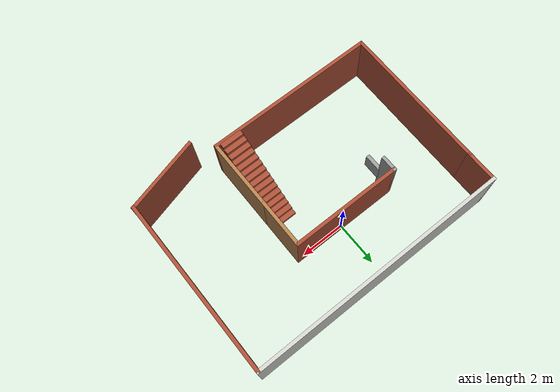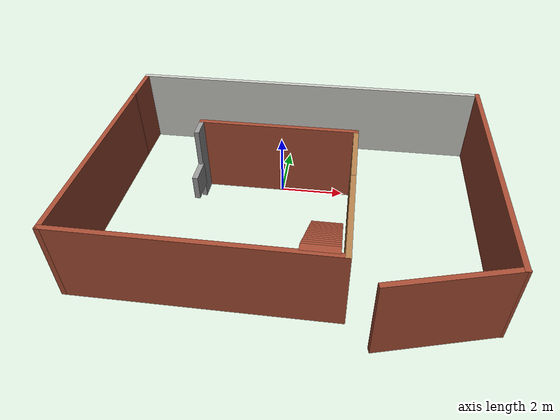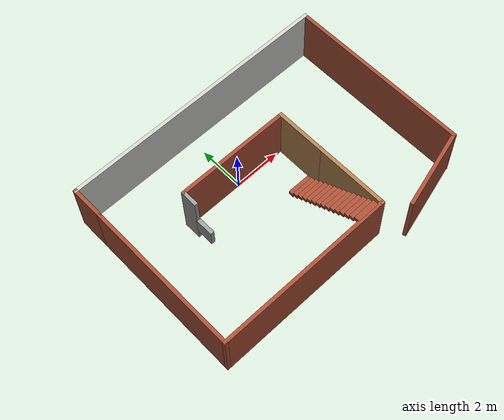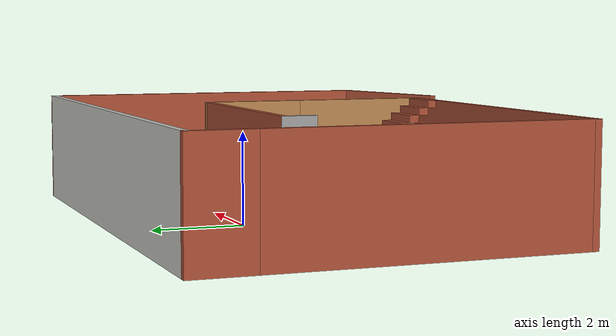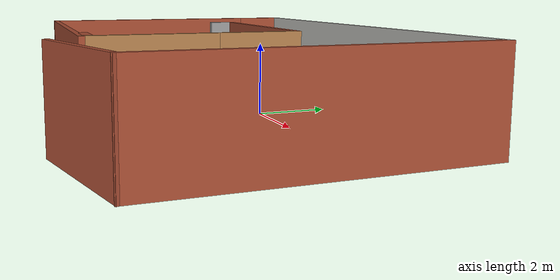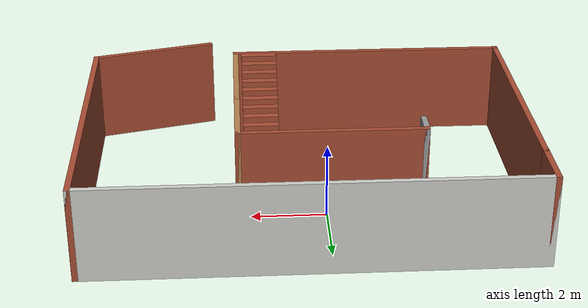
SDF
<?xml version='1.0'?>
<sdf version='1.6'>
  <model name='myModel'>
    <pose frame=''>0.508428 -1.58695 0 0 -0 0</pose>
    <link name='Stairs_0'>
      <visual name='Stairs_0_Visual_0'>
        <pose frame=''>1.12473 -0.163848 0.083333 0 -0 0</pose>
        <geometry>
          <box>
            <size>1 0.233333 0.166667</size>
          </box>
        </geometry>
        <material>
          <script>
            <uri>file://media/materials/scripts/gazebo.material</uri>
            <name>Gazebo/Bricks</name>
          </script>
          <ambient>1 1 1 1</ambient>
        </material>
        <meta>
          <layer>0</layer>
        </meta>
      </visual>
      <collision name='Stairs_0_Collision_0'>
        <geometry>
          <box>
            <size>1 0.233333 0.166667</size>
          </box>
        </geometry>
        <pose frame=''>1.12473 -0.163848 0.083333 0 -0 0</pose>
      </collision>
      <visual name='Stairs_0_Visual_1'>
        <pose frame=''>1.12473 -0.397181 0.25 0 -0 0</pose>
        <geometry>
          <box>
            <size>1 0.233333 0.166667</size>
          </box>
        </geometry>
        <material>
          <script>
            <uri>file://media/materials/scripts/gazebo.material</uri>
            <name>Gazebo/Bricks</name>
          </script>
          <ambient>1 1 1 1</ambient>
        </material>
        <meta>
          <layer>0</layer>
        </meta>
      </visual>
      <collision name='Stairs_0_Collision_1'>
        <geometry>
          <box>
            <size>1 0.233333 0.166667</size>
          </box>
        </geometry>
        <pose frame=''>1.12473 -0.397181 0.25 0 -0 0</pose>
      </collision>
      <visual name='Stairs_0_Visual_2'>
        <pose frame=''>1.12473 -0.630514 0.416667 0 -0 0</pose>
        <geometry>
          <box>
            <size>1 0.233333 0.166667</size>
          </box>
        </geometry>
        <material>
          <script>
            <uri>file://media/materials/scripts/gazebo.material</uri>
            <name>Gazebo/Bricks</name>
          </script>
          <ambient>1 1 1 1</ambient>
        </material>
        <meta>
          <layer>0</layer>
        </meta>
      </visual>
      <collision name='Stairs_0_Collision_2'>
        <geometry>
          <box>
            <size>1 0.233333 0.166667</size>
          </box>
        </geometry>
        <pose frame=''>1.12473 -0.630514 0.416667 0 -0 0</pose>
      </collision>
      <visual name='Stairs_0_Visual_3'>
        <pose frame=''>1.12473 -0.863847 0.583333 0 -0 0</pose>
        <geometry>
          <box>
            <size>1 0.233333 0.166667</size>
          </box>
        </geometry>
        <material>
          <script>
            <uri>file://media/materials/scripts/gazebo.material</uri>
            <name>Gazebo/Bricks</name>
          </script>
          <ambient>1 1 1 1</ambient>
        </material>
        <meta>
          <layer>0</layer>
        </meta>
      </visual>
      <collision name='Stairs_0_Collision_3'>
        <geometry>
          <box>
            <size>1 0.233333 0.166667</size>
          </box>
        </geometry>
        <pose frame=''>1.12473 -0.863847 0.583333 0 -0 0</pose>
      </collision>
      <visual name='Stairs_0_Visual_4'>
        <pose frame=''>1.12473 -1.09718 0.75 0 -0 0</pose>
        <geometry>
          <box>
            <size>1 0.233333 0.166667</size>
          </box>
        </geometry>
        <material>
          <script>
            <uri>file://media/materials/scripts/gazebo.material</uri>
            <name>Gazebo/Bricks</name>
          </script>
          <ambient>1 1 1 1</ambient>
        </material>
        <meta>
          <layer>0</layer>
        </meta>
      </visual>
      <collision name='Stairs_0_Collision_4'>
        <geometry>
          <box>
            <size>1 0.233333 0.166667</size>
          </box>
        </geometry>
        <pose frame=''>1.12473 -1.09718 0.75 0 -0 0</pose>
      </collision>
      <visual name='Stairs_0_Visual_5'>
        <pose frame=''>1.12473 -1.33051 0.916667 0 -0 0</pose>
        <geometry>
          <box>
            <size>1 0.233333 0.166667</size>
          </box>
        </geometry>
        <material>
          <script>
            <uri>file://media/materials/scripts/gazebo.material</uri>
            <name>Gazebo/Bricks</name>
          </script>
          <ambient>1 1 1 1</ambient>
        </material>
        <meta>
          <layer>0</layer>
        </meta>
      </visual>
      <collision name='Stairs_0_Collision_5'>
        <geometry>
          <box>
            <size>1 0.233333 0.166667</size>
          </box>
        </geometry>
        <pose frame=''>1.12473 -1.33051 0.916667 0 -0 0</pose>
      </collision>
      <visual name='Stairs_0_Visual_6'>
        <pose frame=''>1.12473 -1.56385 1.08333 0 -0 0</pose>
        <geometry>
          <box>
            <size>1 0.233333 0.166667</size>
          </box>
        </geometry>
        <material>
          <script>
            <uri>file://media/materials/scripts/gazebo.material</uri>
            <name>Gazebo/Bricks</name>
          </script>
          <ambient>1 1 1 1</ambient>
        </material>
        <meta>
          <layer>0</layer>
        </meta>
      </visual>
      <collision name='Stairs_0_Collision_6'>
        <geometry>
          <box>
            <size>1 0.233333 0.166667</size>
          </box>
        </geometry>
        <pose frame=''>1.12473 -1.56385 1.08333 0 -0 0</pose>
      </collision>
      <visual name='Stairs_0_Visual_7'>
        <pose frame=''>1.12473 -1.79718 1.25 0 -0 0</pose>
        <geometry>
          <box>
            <size>1 0.233333 0.166667</size>
          </box>
        </geometry>
        <material>
          <script>
            <uri>file://media/materials/scripts/gazebo.material</uri>
            <name>Gazebo/Bricks</name>
          </script>
          <ambient>1 1 1 1</ambient>
        </material>
        <meta>
          <layer>0</layer>
        </meta>
      </visual>
      <collision name='Stairs_0_Collision_7'>
        <geometry>
          <box>
            <size>1 0.233333 0.166667</size>
          </box>
        </geometry>
        <pose frame=''>1.12473 -1.79718 1.25 0 -0 0</pose>
      </collision>
      <visual name='Stairs_0_Visual_8'>
        <pose frame=''>1.12473 -2.03051 1.41667 0 -0 0</pose>
        <geometry>
          <box>
            <size>1 0.233333 0.166667</size>
          </box>
        </geometry>
        <material>
          <script>
            <uri>file://media/materials/scripts/gazebo.material</uri>
            <name>Gazebo/Bricks</name>
          </script>
          <ambient>1 1 1 1</ambient>
        </material>
        <meta>
          <layer>0</layer>
        </meta>
      </visual>
      <collision name='Stairs_0_Collision_8'>
        <geometry>
          <box>
            <size>1 0.233333 0.166667</size>
          </box>
        </geometry>
        <pose frame=''>1.12473 -2.03051 1.41667 0 -0 0</pose>
      </collision>
      <visual name='Stairs_0_Visual_9'>
        <pose frame=''>1.12473 -2.26385 1.58333 0 -0 0</pose>
        <geometry>
          <box>
            <size>1 0.233333 0.166667</size>
          </box>
        </geometry>
        <material>
          <script>
            <uri>file://media/materials/scripts/gazebo.material</uri>
            <name>Gazebo/Bricks</name>
          </script>
          <ambient>1 1 1 1</ambient>
        </material>
        <meta>
          <layer>0</layer>
        </meta>
      </visual>
      <collision name='Stairs_0_Collision_9'>
        <geometry>
          <box>
            <size>1 0.233333 0.166667</size>
          </box>
        </geometry>
        <pose frame=''>1.12473 -2.26385 1.58333 0 -0 0</pose>
      </collision>
      <visual name='Stairs_0_Visual_10'>
        <pose frame=''>1.12473 -2.49718 1.75 0 -0 0</pose>
        <geometry>
          <box>
            <size>1 0.233333 0.166667</size>
          </box>
        </geometry>
        <material>
          <script>
            <uri>file://media/materials/scripts/gazebo.material</uri>
            <name>Gazebo/Bricks</name>
          </script>
          <ambient>1 1 1 1</ambient>
        </material>
        <meta>
          <layer>0</layer>
        </meta>
      </visual>
      <collision name='Stairs_0_Collision_10'>
        <geometry>
          <box>
            <size>1 0.233333 0.166667</size>
          </box>
        </geometry>
        <pose frame=''>1.12473 -2.49718 1.75 0 -0 0</pose>
      </collision>
      <visual name='Stairs_0_Visual_11'>
        <pose frame=''>1.12473 -2.73051 1.91667 0 -0 0</pose>
        <geometry>
          <box>
            <size>1 0.233333 0.166667</size>
          </box>
        </geometry>
        <material>
          <script>
            <uri>file://media/materials/scripts/gazebo.material</uri>
            <name>Gazebo/Bricks</name>
          </script>
          <ambient>1 1 1 1</ambient>
        </material>
        <meta>
          <layer>0</layer>
        </meta>
      </visual>
      <collision name='Stairs_0_Collision_11'>
        <geometry>
          <box>
            <size>1 0.233333 0.166667</size>
          </box>
        </geometry>
        <pose frame=''>1.12473 -2.73051 1.91667 0 -0 0</pose>
      </collision>
      <visual name='Stairs_0_Visual_12'>
        <pose frame=''>1.12473 -2.96385 2.08333 0 -0 0</pose>
        <geometry>
          <box>
            <size>1 0.233333 0.166667</size>
          </box>
        </geometry>
        <material>
          <script>
            <uri>file://media/materials/scripts/gazebo.material</uri>
            <name>Gazebo/Bricks</name>
          </script>
          <ambient>1 1 1 1</ambient>
        </material>
        <meta>
          <layer>0</layer>
        </meta>
      </visual>
      <collision name='Stairs_0_Collision_12'>
        <geometry>
          <box>
            <size>1 0.233333 0.166667</size>
          </box>
        </geometry>
        <pose frame=''>1.12473 -2.96385 2.08333 0 -0 0</pose>
      </collision>
      <visual name='Stairs_0_Visual_13'>
        <pose frame=''>1.12473 -3.19718 2.25 0 -0 0</pose>
        <geometry>
          <box>
            <size>1 0.233333 0.166667</size>
          </box>
        </geometry>
        <material>
          <script>
            <uri>file://media/materials/scripts/gazebo.material</uri>
            <name>Gazebo/Bricks</name>
          </script>
          <ambient>1 1 1 1</ambient>
        </material>
        <meta>
          <layer>0</layer>
        </meta>
      </visual>
      <collision name='Stairs_0_Collision_13'>
        <geometry>
          <box>
            <size>1 0.233333 0.166667</size>
          </box>
        </geometry>
        <pose frame=''>1.12473 -3.19718 2.25 0 -0 0</pose>
      </collision>
      <visual name='Stairs_0_Visual_14'>
        <pose frame=''>1.12473 -3.43051 2.41667 0 -0 0</pose>
        <geometry>
          <box>
            <size>1 0.233333 0.166667</size>
          </box>
        </geometry>
        <material>
          <script>
            <uri>file://media/materials/scripts/gazebo.material</uri>
            <name>Gazebo/Bricks</name>
          </script>
          <ambient>1 1 1 1</ambient>
        </material>
        <meta>
          <layer>0</layer>
        </meta>
      </visual>
      <collision name='Stairs_0_Collision_14'>
        <geometry>
          <box>
            <size>1 0.233333 0.166667</size>
          </box>
        </geometry>
        <pose frame=''>1.12473 -3.43051 2.41667 0 -0 0</pose>
      </collision>
    </link>
    <link name='Wall_1'>
      <collision name='Wall_1_Collision'>
        <geometry>
          <box>
            <size>0.75 0.15 2.5</size>
          </box>
        </geometry>
        <pose frame=''>0 0 1.25 0 -0 0</pose>
      </collision>
      <visual name='Wall_1_Visual'>
        <pose frame=''>0 0 1.25 0 -0 0</pose>
        <geometry>
          <box>
            <size>0.75 0.15 2.5</size>
          </box>
        </geometry>
        <material>
          <script>
            <uri>file://media/materials/scripts/gazebo.material</uri>
            <name>Gazebo/Grey</name>
          </script>
          <ambient>1 1 1 1</ambient>
        </material>
        <meta>
          <layer>0</layer>
        </meta>
      </visual>
      <pose frame=''>-3.05843 1.31695 0 0 -0 1.5708</pose>
    </link>
    <link name='Wall_10'>
      <collision name='Wall_10_Collision'>
        <geometry>
          <box>
            <size>8 0.15 2.5</size>
          </box>
        </geometry>
        <pose frame=''>0 0 1.25 0 -0 0</pose>
      </collision>
      <visual name='Wall_10_Visual'>
        <pose frame=''>0 0 1.25 0 -0 0</pose>
        <geometry>
          <box>
            <size>8 0.15 2.5</size>
          </box>
        </geometry>
        <material>
          <script>
            <uri>file://media/materials/scripts/gazebo.material</uri>
            <name>Gazebo/Bricks</name>
          </script>
          <ambient>1 1 1 1</ambient>
        </material>
        <meta>
          <layer>0</layer>
        </meta>
      </visual>
      <pose frame=''>5.79157 0.44195 0 0 -0 -1.5708</pose>
    </link>
    <link name='Wall_11'>
      <collision name='Wall_11_Collision'>
        <geometry>
          <box>
            <size>3.5 0.15 2.5</size>
          </box>
        </geometry>
        <pose frame=''>0 0 1.25 0 -0 0</pose>
      </collision>
      <visual name='Wall_11_Visual'>
        <pose frame=''>0 0 1.25 0 -0 0</pose>
        <geometry>
          <box>
            <size>3.5 0.15 2.5</size>
          </box>
        </geometry>
        <material>
          <script>
            <uri>file://media/materials/scripts/gazebo.material</uri>
            <name>Gazebo/Bricks</name>
          </script>
          <ambient>1 1 1 1</ambient>
        </material>
        <meta>
          <layer>0</layer>
        </meta>
      </visual>
      <pose frame=''>4.17365 -3.91657 0 0 -0 -2.87979</pose>
    </link>
    <link name='Wall_2'>
      <collision name='Wall_2_Collision'>
        <geometry>
          <box>
            <size>5 0.15 2.5</size>
          </box>
        </geometry>
        <pose frame=''>0 0 1.25 0 -0 0</pose>
      </collision>
      <visual name='Wall_2_Visual'>
        <pose frame=''>0 0 1.25 0 -0 0</pose>
        <geometry>
          <box>
            <size>5 0.15 2.5</size>
          </box>
        </geometry>
        <material>
          <script>
            <uri>file://media/materials/scripts/gazebo.material</uri>
            <name>Gazebo/Bricks</name>
          </script>
          <ambient>1 1 1 1</ambient>
        </material>
        <meta>
          <layer>0</layer>
        </meta>
      </visual>
      <pose frame=''>-0.633428 1.61695 0 0 -0 0</pose>
    </link>
    <link name='Wall_3'>
      <collision name='Wall_3_Collision'>
        <geometry>
          <box>
            <size>2.25 0.15 2.5</size>
          </box>
        </geometry>
        <pose frame=''>0 0 1.25 0 -0 0</pose>
      </collision>
      <visual name='Wall_3_Visual'>
        <pose frame=''>0 0 1.25 0 -0 0</pose>
        <geometry>
          <box>
            <size>2.25 0.15 2.5</size>
          </box>
        </geometry>
        <material>
          <script>
            <uri>file://media/materials/scripts/gazebo.material</uri>
            <name>Gazebo/Wood</name>
          </script>
          <ambient>1 1 1 1</ambient>
        </material>
        <meta>
          <layer>0</layer>
        </meta>
      </visual>
      <pose frame=''>1.79157 0.56695 0 0 -0 -1.5708</pose>
    </link>
    <link name='Wall_5'>
      <collision name='Wall_5_Collision'>
        <geometry>
          <box>
            <size>3.25 0.15 2.5</size>
          </box>
        </geometry>
        <pose frame=''>0 0 1.25 0 -0 0</pose>
      </collision>
      <visual name='Wall_5_Visual'>
        <pose frame=''>0 0 1.25 0 -0 0</pose>
        <geometry>
          <box>
            <size>3.25 0.15 2.5</size>
          </box>
        </geometry>
        <material>
          <script>
            <uri>file://media/materials/scripts/gazebo.material</uri>
            <name>Gazebo/Wood</name>
          </script>
          <ambient>1 1 1 1</ambient>
        </material>
        <meta>
          <layer>0</layer>
        </meta>
      </visual>
      <pose frame=''>1.79157 -2.03305 0 0 -0 -1.5708</pose>
    </link>
    <link name='Wall_6'>
      <collision name='Wall_6_Collision'>
        <geometry>
          <box>
            <size>7.75 0.15 2.5</size>
          </box>
        </geometry>
        <pose frame=''>0 0 1.25 0 -0 0</pose>
      </collision>
      <visual name='Wall_6_Visual'>
        <pose frame=''>0 0 1.25 0 -0 0</pose>
        <geometry>
          <box>
            <size>7.75 0.15 2.5</size>
          </box>
        </geometry>
        <material>
          <script>
            <uri>file://media/materials/scripts/gazebo.material</uri>
            <name>Gazebo/Bricks</name>
          </script>
          <ambient>1 1 1 1</ambient>
        </material>
        <meta>
          <layer>0</layer>
        </meta>
      </visual>
      <pose frame=''>-2.00843 -3.58305 0 0 -0 3.14159</pose>
    </link>
    <link name='Wall_7'>
      <collision name='Wall_7_Collision'>
        <geometry>
          <box>
            <size>6.75 0.15 2.5</size>
          </box>
        </geometry>
        <pose frame=''>0 0 1.25 0 -0 0</pose>
      </collision>
      <visual name='Wall_7_Visual'>
        <pose frame=''>0 0 1.25 0 -0 0</pose>
        <geometry>
          <box>
            <size>6.75 0.15 2.5</size>
          </box>
        </geometry>
        <material>
          <script>
            <uri>file://media/materials/scripts/gazebo.material</uri>
            <name>Gazebo/Bricks</name>
          </script>
          <ambient>1 1 1 1</ambient>
        </material>
        <meta>
          <layer>0</layer>
        </meta>
      </visual>
      <pose frame=''>-5.80843 -0.28305 0 0 -0 1.5708</pose>
    </link>
    <link name='Wall_8'>
      <collision name='Wall_8_Collision'>
        <geometry>
          <box>
            <size>1.5 0.15 2.5</size>
          </box>
        </geometry>
        <pose frame=''>0 0 1.25 0 -0 0</pose>
      </collision>
      <visual name='Wall_8_Visual'>
        <pose frame=''>0 0 1.25 0 -0 0</pose>
        <geometry>
          <box>
            <size>1.5 0.15 2.5</size>
          </box>
        </geometry>
        <material>
          <script>
            <uri>file://media/materials/scripts/gazebo.material</uri>
            <name>Gazebo/Bricks</name>
          </script>
          <ambient>1 1 1 1</ambient>
        </material>
        <meta>
          <layer>0</layer>
        </meta>
      </visual>
      <pose frame=''>-5.80843 3.69195 0 0 -0 1.5708</pose>
    </link>
    <link name='Wall_9'>
      <collision name='Wall_9_Collision'>
        <geometry>
          <box>
            <size>11.75 0.15 2.5</size>
          </box>
        </geometry>
        <pose frame=''>0 0 1.25 0 -0 0</pose>
      </collision>
      <visual name='Wall_9_Visual'>
        <pose frame=''>0 0 1.25 0 -0 0</pose>
        <geometry>
          <box>
            <size>11.75 0.15 2.5</size>
          </box>
        </geometry>
        <material>
          <script>
            <uri>file://media/materials/scripts/gazebo.material</uri>
            <name>Gazebo/CeilingTiled</name>
          </script>
          <ambient>1 1 1 1</ambient>
        </material>
        <meta>
          <layer>0</layer>
        </meta>
      </visual>
      <pose frame=''>-0.008428 4.36695 0 0 -0 0</pose>
    </link>
    <link name='Window_1'>
      <collision name='Window_1_Collision'>
        <geometry>
          <box>
            <size>0.8 0.17 0.8</size>
          </box>
        </geometry>
        <pose frame=''>0 0 0.4 0 -0 0</pose>
      </collision>
      <visual name='Window_1_Visual'>
        <pose frame=''>0 0 0.4 0 -0 0</pose>
        <geometry>
          <box>
            <size>0.8 0.17 0.8</size>
          </box>
        </geometry>
        <material>
          <script>
            <uri>file://media/materials/scripts/gazebo.material</uri>
            <name>Gazebo/Grey</name>
          </script>
        </material>
      </visual>
      <pose frame=''>-3.04843 0.59695 0.5 0 -0 1.5708</pose>
    </link>
    <static>1</static>
  </model>
</sdf>
